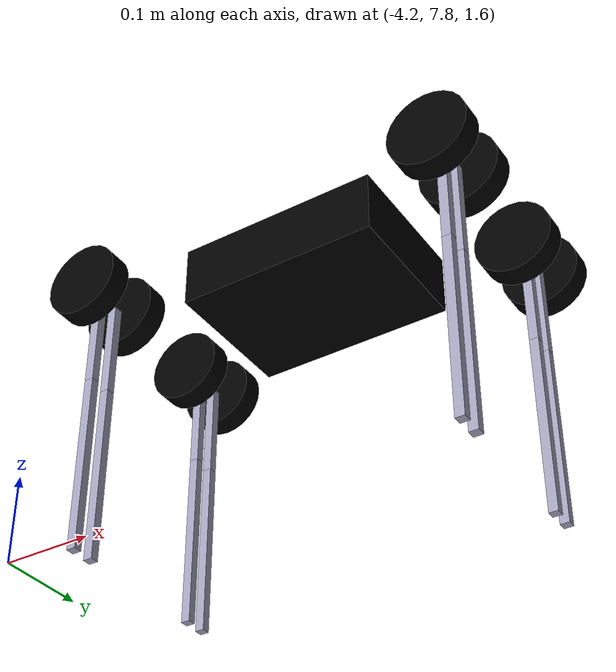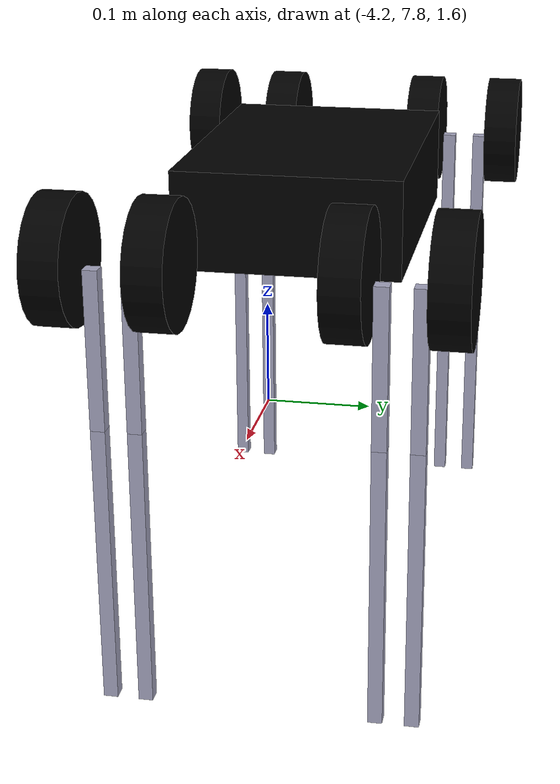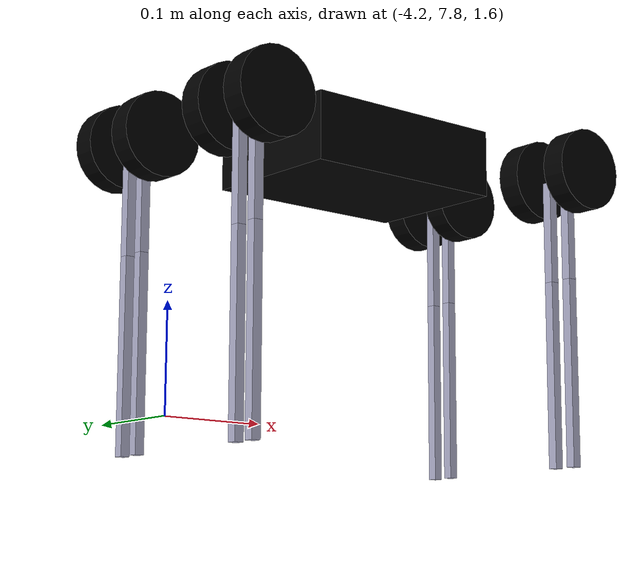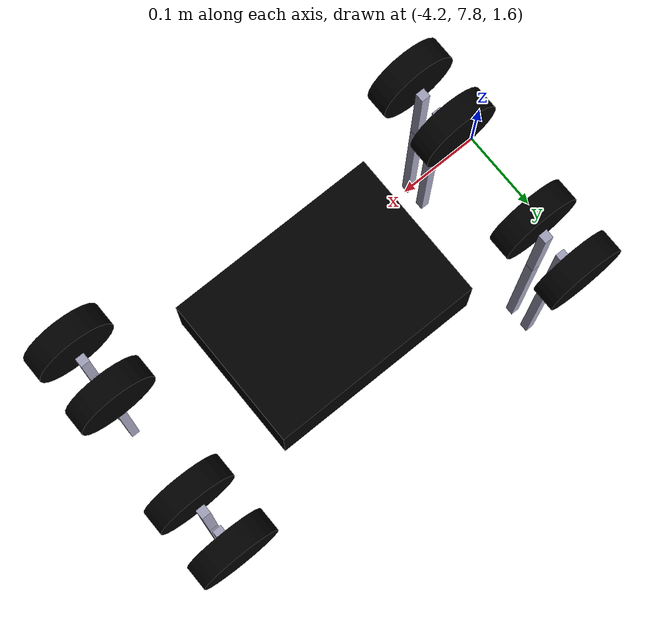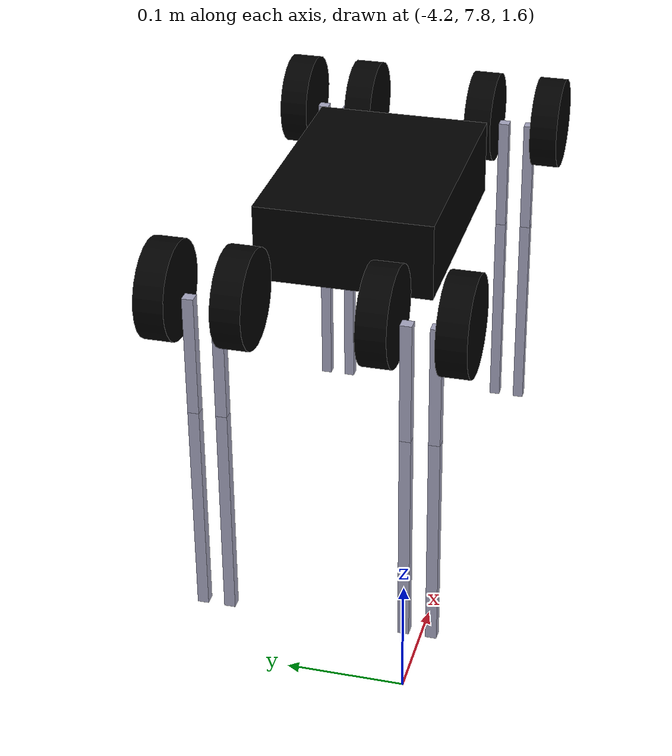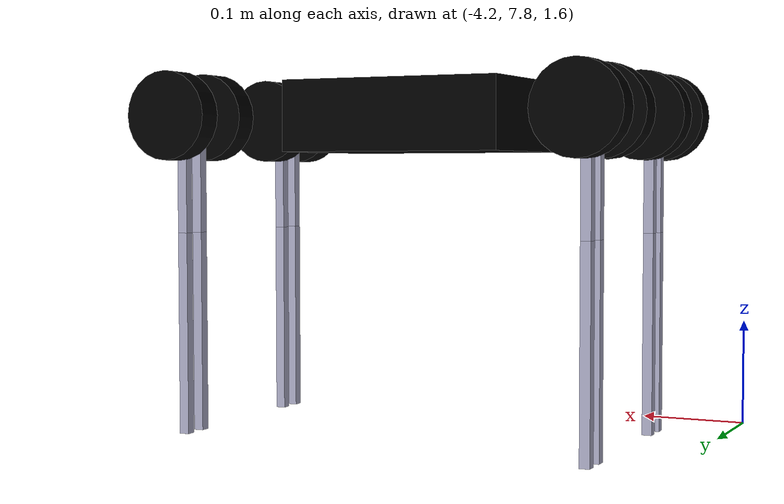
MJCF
<mujoco model="quadruped">
  <compiler angle="radian" />

  <worldbody>
    <body name="BP_Quadruped_C_UAID_047C163BA5E7B8C402_1316620930__root" pos="-3.9 7.9 1.9000000000000001" quat="6.083978620542759e-09 6.123233958483139e-17 -0.9999999999999997 -6.12323395848314e-17"><freejoint name="BP_Quadruped_C_UAID_047C163BA5E7B8C402_1316620930_freejoint" /><geom size="0.113 0.08 0.035" type="box" contype="0" conaffinity="0" group="1" density="0" rgba="0 0 0 1" />
    <geom size="0.113 0.08 0.035" type="box" rgba="0 0 0 1" />
    <body name="motor_front_rightR_link" pos="0.21 -0.125 0" quat="0.707123 0.70709 0 0">
      <inertial pos="0 0.01 -0.00333333" quat="0.811242 0.58471 0 0" mass="0.3" diaginertia="2.00017 2.00017 2" />
      <joint name="motor_front_rightR_joint" pos="0 0 0" axis="0 0 1" actuatorfrcrange="-100 100" />
      <geom size="0.0434 0.013" type="cylinder" contype="0" conaffinity="0" group="1" density="0" rgba="0 0 0 1" />
      <geom size="0.0434 0.013" type="cylinder" rgba="0 0 0 1" />
      <geom size="0.005 0.005 0.055" pos="0 0.06 -0.02" quat="0.707123 -0.70709 0 0" type="box" contype="0" conaffinity="0" group="1" density="0" rgba="0.65 0.65 0.75 1" />
      <geom size="0.005 0.005 0.055" pos="0 0.06 -0.02" quat="0.707123 -0.70709 0 0" type="box" rgba="0.65 0.65 0.75 1" />
      <body name="lower_leg_front_rightR_link" pos="0 0.115 -0.0199975" quat="0.707123 -0.70709 0 0">
        <inertial pos="0 0 0" mass="0.05" diaginertia="1 1 1" />
        <joint name="knee_front_rightR_link" pos="0 0 0" axis="0 1 0" actuatorfrcrange="-100 100" />
        <geom size="0.005 0.005 0.1" pos="0 0 0.1" type="box" contype="0" conaffinity="0" group="1" density="0" rgba="0.65 0.65 0.75 1" />
        <geom size="0.005 0.005 0.1" pos="0 0 0.1" type="box" rgba="0.65 0.65 0.75 1" />
      </body>
    </body>
    <body name="motor_front_rightL_link" pos="0.21 -0.06 0" quat="0.707123 0.70709 0 0">
      <inertial pos="0 0.01 0.00333333" quat="0.58471 0.811242 0 0" mass="0.3" diaginertia="2.00017 2.00017 2" />
      <joint name="motor_front_rightL_joint" pos="0 0 0" axis="0 0 1" actuatorfrcrange="-100 100" />
      <geom size="0.0434 0.013" type="cylinder" contype="0" conaffinity="0" group="1" density="0" rgba="0 0 0 1" />
      <geom size="0.0434 0.013" type="cylinder" rgba="0 0 0 1" />
      <geom size="0.005 0.005 0.055" pos="0 0.06 0.02" quat="0.707123 -0.70709 0 0" type="box" contype="0" conaffinity="0" group="1" density="0" rgba="0.65 0.65 0.75 1" />
      <geom size="0.005 0.005 0.055" pos="0 0.06 0.02" quat="0.707123 -0.70709 0 0" type="box" rgba="0.65 0.65 0.75 1" />
      <body name="lower_leg_front_rightL_link" pos="0 0.115 0.0200025" quat="0.707123 -0.70709 0 0">
        <inertial pos="0 0 0" mass="0.05" diaginertia="1 1 1" />
        <joint name="knee_front_rightL_link" pos="0 0 0" axis="0 1 0" actuatorfrcrange="-100 100" />
        <geom size="0.005 0.005 0.1" pos="0 0 0.1" type="box" contype="0" conaffinity="0" group="1" density="0" rgba="0.65 0.65 0.75 1" />
        <geom size="0.005 0.005 0.1" pos="0 0 0.1" type="box" rgba="0.65 0.65 0.75 1" />
      </body>
    </body>
    <body name="motor_front_leftR_link" pos="0.21 0.125 0" quat="0.707123 0.70709 0 0">
      <inertial pos="0 0.01 0.00333333" quat="0.58471 0.811242 0 0" mass="0.3" diaginertia="2.00017 2.00017 2" />
      <joint name="motor_front_leftR_joint" pos="0 0 0" axis="0 0 1" actuatorfrcrange="-100 100" />
      <geom size="0.0434 0.013" type="cylinder" contype="0" conaffinity="0" group="1" density="0" rgba="0 0 0 1" />
      <geom size="0.0434 0.013" type="cylinder" rgba="0 0 0 1" />
      <geom size="0.005 0.005 0.055" pos="0 0.06 0.02" quat="0.707123 -0.70709 0 0" type="box" contype="0" conaffinity="0" group="1" density="0" rgba="0.65 0.65 0.75 1" />
      <geom size="0.005 0.005 0.055" pos="0 0.06 0.02" quat="0.707123 -0.70709 0 0" type="box" rgba="0.65 0.65 0.75 1" />
      <body name="lower_leg_front_leftR_link" pos="0 0.115 0.0200025" quat="0.707123 -0.70709 0 0">
        <inertial pos="0 0 0" mass="0.05" diaginertia="1 1 1" />
        <joint name="knee_front_leftR_link" pos="0 0 0" axis="0 1 0" actuatorfrcrange="-100 100" />
        <geom size="0.005 0.005 0.1" pos="0 0 0.1" type="box" contype="0" conaffinity="0" group="1" density="0" rgba="0.65 0.65 0.75 1" />
        <geom size="0.005 0.005 0.1" pos="0 0 0.1" type="box" rgba="0.65 0.65 0.75 1" />
      </body>
    </body>
    <body name="motor_front_leftL_link" pos="0.21 0.06 0" quat="0.707123 0.70709 0 0">
      <inertial pos="0 0.01 -0.00333333" quat="0.811242 0.58471 0 0" mass="0.3" diaginertia="2.00017 2.00017 2" />
      <joint name="motor_front_leftL_joint" pos="0 0 0" axis="0 0 1" actuatorfrcrange="-100 100" />
      <geom size="0.0434 0.013" type="cylinder" contype="0" conaffinity="0" group="1" density="0" rgba="0 0 0 1" />
      <geom size="0.0434 0.013" type="cylinder" rgba="0 0 0 1" />
      <geom size="0.005 0.005 0.055" pos="0 0.06 -0.02" quat="0.707123 -0.70709 0 0" type="box" contype="0" conaffinity="0" group="1" density="0" rgba="0.65 0.65 0.75 1" />
      <geom size="0.005 0.005 0.055" pos="0 0.06 -0.02" quat="0.707123 -0.70709 0 0" type="box" rgba="0.65 0.65 0.75 1" />
      <body name="lower_leg_front_leftL_link" pos="0 0.115 -0.0199975" quat="0.707123 -0.70709 0 0">
        <inertial pos="0 0 0" mass="0.05" diaginertia="1 1 1" />
        <joint name="knee_front_leftL_link" pos="0 0 0" axis="0 1 0" actuatorfrcrange="-100 100" />
        <geom size="0.005 0.005 0.1" pos="0 0 0.1" type="box" contype="0" conaffinity="0" group="1" density="0" rgba="0.65 0.65 0.75 1" />
        <geom size="0.005 0.005 0.1" pos="0 0 0.1" type="box" rgba="0.65 0.65 0.75 1" />
      </body>
    </body>
    <body name="motor_back_rightR_link" pos="-0.21 -0.125 0" quat="0.707123 0.70709 0 0">
      <inertial pos="0 0.01 -0.00333333" quat="0.811242 0.58471 0 0" mass="0.3" diaginertia="2.00017 2.00017 2" />
      <joint name="motor_back_rightR_joint" pos="0 0 0" axis="0 0 1" actuatorfrcrange="-100 100" />
      <geom size="0.0434 0.013" type="cylinder" contype="0" conaffinity="0" group="1" density="0" rgba="0 0 0 1" />
      <geom size="0.0434 0.013" type="cylinder" rgba="0 0 0 1" />
      <geom size="0.005 0.005 0.055" pos="0 0.06 -0.02" quat="0.707123 -0.70709 0 0" type="box" contype="0" conaffinity="0" group="1" density="0" rgba="0.65 0.65 0.75 1" />
      <geom size="0.005 0.005 0.055" pos="0 0.06 -0.02" quat="0.707123 -0.70709 0 0" type="box" rgba="0.65 0.65 0.75 1" />
      <body name="lower_leg_back_rightR_link" pos="0 0.115 -0.0199975" quat="0.707123 -0.70709 0 0">
        <inertial pos="0 0 0" mass="0.05" diaginertia="1 1 1" />
        <joint name="knee_back_rightR_link" pos="0 0 0" axis="0 1 0" actuatorfrcrange="-100 100" />
        <geom size="0.005 0.005 0.1" pos="0 0 0.1" type="box" contype="0" conaffinity="0" group="1" density="0" rgba="0.65 0.65 0.75 1" />
        <geom size="0.005 0.005 0.1" pos="0 0 0.1" type="box" rgba="0.65 0.65 0.75 1" />
      </body>
    </body>
    <body name="motor_back_rightL_link" pos="-0.21 -0.06 0" quat="0.707123 0.70709 0 0">
      <inertial pos="0 0.01 0.00333333" quat="0.58471 0.811242 0 0" mass="0.3" diaginertia="2.00017 2.00017 2" />
      <joint name="motor_back_rightL_joint" pos="0 0 0" axis="0 0 1" actuatorfrcrange="-100 100" />
      <geom size="0.0434 0.013" type="cylinder" contype="0" conaffinity="0" group="1" density="0" rgba="0 0 0 1" />
      <geom size="0.0434 0.013" type="cylinder" rgba="0 0 0 1" />
      <geom size="0.005 0.005 0.055" pos="0 0.06 0.02" quat="0.707123 -0.70709 0 0" type="box" contype="0" conaffinity="0" group="1" density="0" rgba="0.65 0.65 0.75 1" />
      <geom size="0.005 0.005 0.055" pos="0 0.06 0.02" quat="0.707123 -0.70709 0 0" type="box" rgba="0.65 0.65 0.75 1" />
      <body name="lower_leg_back_rightL_link" pos="0 0.115 0.0200025" quat="0.707123 -0.70709 0 0">
        <inertial pos="0 0 0" mass="0.05" diaginertia="1 1 1" />
        <joint name="knee_back_rightL_link" pos="0 0 0" axis="0 1 0" actuatorfrcrange="-100 100" />
        <geom size="0.005 0.005 0.1" pos="0 0 0.1" type="box" contype="0" conaffinity="0" group="1" density="0" rgba="0.65 0.65 0.75 1" />
        <geom size="0.005 0.005 0.1" pos="0 0 0.1" type="box" rgba="0.65 0.65 0.75 1" />
      </body>
    </body>
    <body name="motor_back_leftR_link" pos="-0.21 0.125 0" quat="0.707123 0.70709 0 0">
      <inertial pos="0 0.01 0.00333333" quat="0.58471 0.811242 0 0" mass="0.3" diaginertia="2.00017 2.00017 2" />
      <joint name="motor_back_leftR_joint" pos="0 0 0" axis="0 0 1" actuatorfrcrange="-100 100" />
      <geom size="0.0434 0.013" type="cylinder" contype="0" conaffinity="0" group="1" density="0" rgba="0 0 0 1" />
      <geom size="0.0434 0.013" type="cylinder" rgba="0 0 0 1" />
      <geom size="0.005 0.005 0.055" pos="0 0.06 0.02" quat="0.707123 -0.70709 0 0" type="box" contype="0" conaffinity="0" group="1" density="0" rgba="0.65 0.65 0.75 1" />
      <geom size="0.005 0.005 0.055" pos="0 0.06 0.02" quat="0.707123 -0.70709 0 0" type="box" rgba="0.65 0.65 0.75 1" />
      <body name="lower_leg_back_leftR_link" pos="0 0.115 0.0200025" quat="0.707123 -0.70709 0 0">
        <inertial pos="0 0 0" mass="0.05" diaginertia="1 1 1" />
        <joint name="knee_back_leftR_link" pos="0 0 0" axis="0 1 0" actuatorfrcrange="-100 100" />
        <geom size="0.005 0.005 0.1" pos="0 0 0.1" type="box" contype="0" conaffinity="0" group="1" density="0" rgba="0.65 0.65 0.75 1" />
        <geom size="0.005 0.005 0.1" pos="0 0 0.1" type="box" rgba="0.65 0.65 0.75 1" />
      </body>
    </body>
    <body name="motor_back_leftL_link" pos="-0.21 0.06 0" quat="0.707123 0.70709 0 0">
      <inertial pos="0 0.01 -0.00333333" quat="0.811242 0.58471 0 0" mass="0.3" diaginertia="2.00017 2.00017 2" />
      <joint name="motor_back_leftL_joint" pos="0 0 0" axis="0 0 1" actuatorfrcrange="-100 100" />
      <geom size="0.0434 0.013" type="cylinder" contype="0" conaffinity="0" group="1" density="0" rgba="0 0 0 1" />
      <geom size="0.0434 0.013" type="cylinder" rgba="0 0 0 1" />
      <geom size="0.005 0.005 0.055" pos="0 0.06 -0.02" quat="0.707123 -0.70709 0 0" type="box" contype="0" conaffinity="0" group="1" density="0" rgba="0.65 0.65 0.75 1" />
      <geom size="0.005 0.005 0.055" pos="0 0.06 -0.02" quat="0.707123 -0.70709 0 0" type="box" rgba="0.65 0.65 0.75 1" />
      <body name="lower_leg_back_leftL_link" pos="0 0.115 -0.0199975" quat="0.707123 -0.70709 0 0">
        <inertial pos="0 0 0" mass="0.05" diaginertia="1 1 1" />
        <joint name="knee_back_leftL_link" pos="0 0 0" axis="0 1 0" actuatorfrcrange="-100 100" />
        <geom size="0.005 0.005 0.1" pos="0 0 0.1" type="box" contype="0" conaffinity="0" group="1" density="0" rgba="0.65 0.65 0.75 1" />
        <geom size="0.005 0.005 0.1" pos="0 0 0.1" type="box" rgba="0.65 0.65 0.75 1" />
      </body>
    </body>
  </body></worldbody>
</mujoco>
